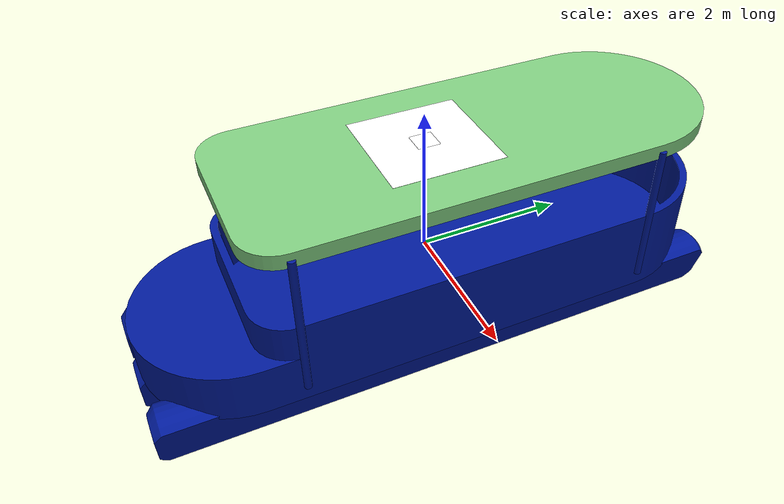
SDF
<?xml version="1.0" ?>
<sdf version="1.11">
  <model name="pohang_barge">
    <link name="base_link">

      <inertial>
        <mass>0.0001</mass>
        <inertia>
          <ixx>1e-09</ixx>
          <ixy>0</ixy>
          <ixz>0</ixz>
          <iyy>1e-09</iyy>
          <iyz>0</iyz>
          <izz>1e-09</izz>
        </inertia>
      </inertial>

      <!-- GPS tracking the barge -->
      <sensor name="navsat_sensor" type="navsat">
        <gz_frame_id>base_link</gz_frame_id>
        <always_on>1</always_on>
        <update_rate>5</update_rate>

        <navsat>
          <position_sensing>
          <horizontal>
            <noise type="gaussian">
              <stddev>1.2e-5</stddev>
            </noise>
          </horizontal>
        </position_sensing>
        </navsat>

        <topic>/barge/gps</topic>
      </sensor>

    </link>

    <link name="rigid_group_1_1">
      <inertial>
        <mass>10000</mass>
        <inertia>
          <ixx>10000</ixx>
          <iyy>10000</iyy>
          <izz>10000</izz>
        </inertia>
      </inertial>

      <!-- body1 -->
      <visual name="rigid_group_1_1__body1_visual">
        <geometry>
          <mesh>
            <scale>0.01 0.01 0.01</scale>
            <uri>meshes/rigid_group_1_1/body1_visual.obj</uri>
          </mesh>
        </geometry>
        <material>
          <ambient>0.0 0.1 0.3 1</ambient>
          <diffuse>0.0 0.1 0.6 1</diffuse>
          <specular>0.2 0.2 0.2 1</specular>
          <emissive>0 0 0 1</emissive>
        </material>
      </visual>

      <!-- body2 -->
      <visual name="rigid_group_1_1__body2_visual">
        <geometry>
          <mesh>
            <scale>0.01 0.01 0.01</scale>
            <uri>meshes/rigid_group_1_1/body2_visual.obj</uri>
          </mesh>
        </geometry>
        <material>
          <ambient>0.0 0.1 0.3 1</ambient>
          <diffuse>0.0 0.1 0.6 1</diffuse>
          <specular>0.2 0.2 0.2 1</specular>
          <emissive>0 0 0 1</emissive>
        </material>
      </visual>

      <!-- body3 -->
      <visual name="rigid_group_1_1__body3_visual">
        <geometry>
          <mesh>
            <scale>0.01 0.01 0.01</scale>
            <uri>meshes/rigid_group_1_1/body3_visual.obj</uri>
          </mesh>
        </geometry>
        <material>
          <ambient>0.0 0.1 0.3 1</ambient>
          <diffuse>0.0 0.1 0.6 1</diffuse>
          <specular>0.2 0.2 0.2 1</specular>
          <emissive>0 0 0 1</emissive>
        </material>
      </visual>

      <!-- body4 -->
      <visual name="rigid_group_1_1__body4_visual">
        <geometry>
          <mesh>
            <scale>0.01 0.01 0.01</scale>
            <uri>meshes/rigid_group_1_1/body4_visual.obj</uri>
          </mesh>
        </geometry>
        <material>
          <ambient>0.0 0.1 0.3 1</ambient>
          <diffuse>0.0 0.1 0.6 1</diffuse>
          <specular>0.2 0.2 0.2 1</specular>
          <emissive>0 0 0 1</emissive>
        </material>
      </visual>

      <!-- body5 -->
      <visual name="rigid_group_1_1__body5_visual">
        <geometry>
          <mesh>
            <scale>0.01 0.01 0.01</scale>
            <uri>meshes/rigid_group_1_1/body5_visual.obj</uri>
          </mesh>
        </geometry>
        <material>
          <ambient>0.0 0.1 0.3 1</ambient>
          <diffuse>0.0 0.1 0.6 1</diffuse>
          <specular>0.2 0.2 0.2 1</specular>
          <emissive>0 0 0 1</emissive>
        </material>
      </visual>

      <!-- body6 -->
      <visual name="rigid_group_1_1__body6_visual">
        <geometry>
          <mesh>
            <scale>0.01 0.01 0.01</scale>
            <uri>meshes/rigid_group_1_1/body6_visual.obj</uri>
          </mesh>
        </geometry>
        <material>
          <ambient>0.0 0.1 0.3 1</ambient>
          <diffuse>0.0 0.1 0.6 1</diffuse>
          <specular>0.2 0.2 0.2 1</specular>
          <emissive>0 0 0 1</emissive>
        </material>
      </visual>

      <!-- body7 -->
      <visual name="rigid_group_1_1__body7_visual">
        <geometry>
          <mesh>
            <scale>0.01 0.01 0.01</scale>
            <uri>meshes/rigid_group_1_1/body7_visual.obj</uri>
          </mesh>
        </geometry>
          <material>
            <ambient>0.8 0.8 0.8 1</ambient>
            <diffuse>0.5 0.8 0.5 1</diffuse>
            <specular>0.8 0.8 0.8 1</specular>
          </material>
      </visual>

      <!-- body8 -->
      <visual name="rigid_group_1_1__body8_visual">
        <geometry>
          <mesh>
            <scale>0.01 0.01 0.01</scale>
            <uri>meshes/rigid_group_1_1/body8_visual.obj</uri>
          </mesh>
        </geometry>
        <material>
          <ambient>0.0 0.1 0.3 1</ambient>
          <diffuse>0.0 0.1 0.6 1</diffuse>
          <specular>0.2 0.2 0.2 1</specular>
          <emissive>0 0 0 1</emissive>
        </material>
      </visual>

      <!-- body9 -->
      <visual name="rigid_group_1_1__body9_visual">
        <geometry>
          <mesh>
            <scale>0.01 0.01 0.01</scale>
            <uri>meshes/rigid_group_1_1/body9_visual.obj</uri>
          </mesh>
        </geometry>
        <material>
          <ambient>0.0 0.1 0.3 1</ambient>
          <diffuse>0.0 0.1 0.6 1</diffuse>
          <specular>0.2 0.2 0.2 1</specular>
          <emissive>0 0 0 1</emissive>
        </material>
      </visual>

      <!-- collisions unchanged -->
      <collision name="rigid_group_1_1__body1_collision">
        <pose relative_to="__model__">0.0 0.0 -0.1 -0.0 -1.5707963267948966 0</pose>
        <geometry>
          <box>
            <size>1.2 7.9 2.6</size>
          </box>
        </geometry>
      </collision>
      <collision name="rigid_group_1_1__body2_collision">
        <pose relative_to="__model__">-0.07405320373339386 -5.751766144025233e-11 -0.9299048710903611 3.1415926528421667 -1.3089969390061658 -7.22151965131561e-10</pose>
        <geometry>
          <box>
            <size>0.7995119524175354 8.0 0.5187596816905417</size>
          </box>
        </geometry>
      </collision>
      <collision name="rigid_group_1_1__body3_collision">
        <pose relative_to="__model__">0.8259467962666065 -5.7517661440252314e-11 -0.9299048710903611 3.1415926528421667 -1.3089969390061658 -7.221519651315611e-10</pose>
        <geometry>
          <box>
            <size>0.7995119524175354 8.0 0.5187596816905415</size>
          </box>
        </geometry>
      </collision>
      <collision name="rigid_group_1_1__body4_collision">
        <pose relative_to="__model__">1.3 -2.150000000000002 0.5000000000000004 -0.0 -1.5707963267948966 0</pose>
        <geometry>
          <box>
            <size>2.0 0.1 0.1</size>
          </box>
        </geometry>
      </collision>
      <collision name="rigid_group_1_1__body5_collision">
        <pose relative_to="__model__">-1.3 2.65 0.5 -0.0 -1.5707963267948966 0</pose>
        <geometry>
          <box>
            <size>2.0 0.1 0.1</size>
          </box>
        </geometry>
      </collision>
      <collision name="rigid_group_1_1__body6_collision">
        <pose relative_to="__model__">-1.3000000000000012 -2.15 0.49999999999999983 -0.0 -1.5707963267948966 0</pose>
        <geometry>
          <box>
            <size>2.0000000000000004 0.1 0.10000000000000014</size>
          </box>
        </geometry>
      </collision>
      <collision name="rigid_group_1_1__body7_collision">
        <pose relative_to="__model__">0.0 0.65 1.5 -0.0 -1.5707963267948966 0</pose>
        <geometry>
          <box>
            <size>0.2 6.6 2.6</size>
          </box>
        </geometry>
      </collision>
      <collision name="rigid_group_1_1__body8_collision">
        <pose relative_to="__model__">1.3 2.65 0.5 -0.0 -1.5707963267948966 0</pose>
        <geometry>
          <box>
            <size>2.0 0.1 0.1</size>
          </box>
        </geometry>
      </collision>
      <collision name="rigid_group_1_1__body9_collision">
        <pose relative_to="__model__">-0.9740532037333941 -5.7517661440252295e-11 -0.9299048710903612 3.1415926528421667 -1.3089969390061658 -7.221519651315611e-10</pose>
        <geometry>
          <box>
            <size>0.7995119524175353 8.0 0.5187596816905414</size>
          </box>
        </geometry>
      </collision>
    </link>

    <plugin
      filename="libBargeController.so"
      name="custom::BargeController">
      <link_name>rigid_group_1_1</link_name>
    </plugin>

    <!-- ArucoTag model for good practice -->
    <include>
      <uri>model://arucotag_0</uri>
      <name>arucotag_0</name>
      <pose>0 0 1.632 0 0 3.141</pose>
    </include>

    <include>
      <uri>model://arucotag_19</uri>
      <name>arucotag_19</name>
      <pose>0 0 1.63 0 0 3.141</pose>
    </include>

    <!-- Fixed joint -->
    <joint name="fixed_joint_to_arucotag_0" type="fixed">
      <parent>base_link</parent>   <!-- A link in the parent model -->
      <child>arucotag_0::base_0</child> <!-- Link inside child model -->
    </joint>

    <joint name="fixed_joint_to_arucotag_19" type="fixed">
      <parent>base_link</parent>   <!-- A link in the parent model -->
      <child>arucotag_19::base_19</child> <!-- Link inside child model -->
    </joint>

    <!-- Pose publisher -->
    <plugin
      filename="gz-sim-odometry-publisher-system"
      name="gz::sim::systems::OdometryPublisher">
      <odom_publish_frequency>50</odom_publish_frequency>
      <dimensions>3</dimensions>
      <odom_topic>barge/odom</odom_topic>
      <odom_covariance_topic>barge/odom_covariance</odom_covariance_topic>
    </plugin>

    <joint name="base_link_joint" type="fixed">
      <parent>base_link</parent>
      <child>rigid_group_1_1</child>
      <axis/>
    </joint>

  </model>
</sdf>

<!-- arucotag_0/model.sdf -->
<sdf version='1.9'>
  <model name='arucotag_0'>
    <static>true</static>
    <pose>0 0 0.001 0 0 0</pose>
    <link name='base_0'>
      <visual name='base_visual'>
        <geometry>
          <plane>
            <normal>0 0 1</normal>
            <size>0.3 0.3</size>
          </plane>
        </geometry>
        <material>
          <diffuse>1 1 1 1</diffuse>
          <specular>0.4 0.4 0.4 1</specular>
          <pbr>
            <metal>
              <albedo_map>model://arucotag_0/4x4_1000-0.png</albedo_map>
            </metal>
          </pbr>
        </material>
      </visual>

      <!-- GPS tracking tag for px4 groundtruth -->
      <sensor name="navsat_sensor" type="navsat">
        <gz_frame_id>base_0</gz_frame_id>
        <always_on>1</always_on>
        <update_rate>30</update_rate>

        <navsat>
          <position_sensing>
          <horizontal>
            <noise type="gaussian">
              <stddev>0</stddev>
            </noise>
          </horizontal>
        </position_sensing>
        </navsat>

        <topic>/tag/itag/gz_groundtruth_gps</topic>
      </sensor>

    </link>

  </model>
</sdf>

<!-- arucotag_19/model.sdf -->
<sdf version='1.9'>
  <model name='arucotag_19'>
    <static>true</static>
    <pose>0 0 0.001 0 0 0</pose>
    <link name='base_19'>
      <visual name='base_visual'>
        <geometry>
          <plane>
            <normal>0 0 1</normal>
            <size>1.5 1.5</size>
          </plane>
        </geometry>
        <material>
          <diffuse>1 1 1 1</diffuse>
          <specular>0.4 0.4 0.4 1</specular>
          <pbr>
            <metal>
              <albedo_map>model://arucotag_19/6x6_1000-19.png</albedo_map>
            </metal>
          </pbr>
        </material>
      </visual>

      <!-- GPS tracking tag for px4 groundtruth -->
      <sensor name="navsat_sensor" type="navsat">
        <gz_frame_id>base_19</gz_frame_id>
        <always_on>1</always_on>
        <update_rate>30</update_rate>

        <navsat>
          <position_sensing>
          <horizontal>
            <noise type="gaussian">
              <stddev>0</stddev>
            </noise>
          </horizontal>
        </position_sensing>
        </navsat>

        <topic>/tag/otag/gz_groundtruth_gps</topic>
      </sensor>

    </link>

  </model>
</sdf>
